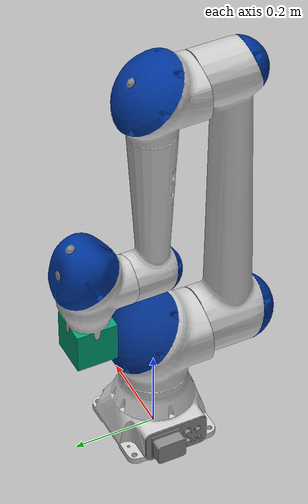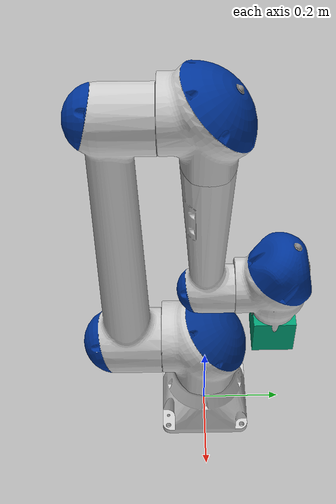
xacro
<?xml version="1.0" ?>
<robot name="motoman_hc10" xmlns:xacro="http://ros.org/wiki/xacro">
  <xacro:include filename="$(find motoman_hc10_support)/urdf/hc10_macro.xacro" />
  <xacro:motoman_hc10 prefix=""/>

    <!-- Attach Kinect to OT -->
  <joint type="fixed" name="tool_camera_joint">
      <origin xyz="0 0 0" rpy="0 0 0"/>
      <child link="camera_rgb_frame"/>
      <parent link="tool0"/>
      <axis xyz="0 0 -0.2" rpy="0 0 0"/>
      <limit effort="10000" velocity="1000"/>
      <dynamics damping="1.0" friction="1.0"/>
  </joint>
</robot>

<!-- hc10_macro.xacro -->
<robot xmlns:xacro="http://ros.org/wiki/xacro">
  <xacro:macro name="motoman_hc10" params="prefix">
    <xacro:include filename="$(find motoman_resources)/urdf/common_materials.xacro"/>
    <!-- link list -->
    <link name="world"/>

    <link name="${prefix}base_link">
      <visual>
        <geometry>
          <mesh filename="package://motoman_hc10_support/meshes/hc10/visual/base_link.dae"/>
        </geometry>
        <xacro:material_yaskawa_blue/>
      </visual>
      <collision>
        <geometry>
          <mesh filename="package://motoman_hc10_support/meshes/hc10/collision/base_link.stl"/>
        </geometry>
      </collision>
      <inertial>
        <origin xyz="0 0 0" rpy="0 0 0"/>
        <mass value="0.1"/>
        <inertia ixx="0.03" ixy="0.03" ixz="0.03" iyy="0.0" iyz="0.0" izz="0.0"/>
      </inertial>
    </link>

    <link name="${prefix}link_1_s">
      <visual>
        <geometry>
          <mesh filename="package://motoman_hc10_support/meshes/hc10/visual/link_1_s.dae"/>
        </geometry>
        <xacro:material_yaskawa_blue/>
      </visual>
      <collision>
        <geometry>
          <mesh filename="package://motoman_hc10_support/meshes/hc10/collision/link_1_s.stl"/>
        </geometry>
      </collision>
      <inertial>
        <origin xyz="0 0 0" rpy="0 0 0"/>
        <mass value="0.1"/>
        <inertia ixx="0.03" ixy="0.03" ixz="0.03" iyy="0.0" iyz="0.0" izz="0.0"/>
      </inertial>
    </link>

    <link name="${prefix}link_2_l">
      <visual>
        <geometry>
          <mesh filename="package://motoman_hc10_support/meshes/hc10/visual/link_2_l.dae"/>
        </geometry>
        <xacro:material_yaskawa_blue/>
      </visual>
      <collision>
        <geometry>
          <mesh filename="package://motoman_hc10_support/meshes/hc10/collision/link_2_l.stl"/>
        </geometry>
      </collision>
      <inertial>
        <origin xyz="0 0 0" rpy="0 0 0"/>
        <mass value="0.1"/>
        <inertia ixx="0.03" ixy="0.03" ixz="0.03" iyy="0.0" iyz="0.0" izz="0.0"/>
      </inertial>
    </link>

    <link name="${prefix}link_3_u">
      <visual>
        <geometry>
          <mesh filename="package://motoman_hc10_support/meshes/hc10/visual/link_3_u.dae"/>
        </geometry>
        <xacro:material_yaskawa_blue/>
      </visual>
      <collision>
        <geometry>
          <mesh filename="package://motoman_hc10_support/meshes/hc10/collision/link_3_u.stl"/>
        </geometry>
      </collision>
      <inertial>
        <origin xyz="0 0 0" rpy="0 0 0"/>
        <mass value="0.1"/>
        <inertia ixx="0.03" ixy="0.03" ixz="0.03" iyy="0.0" iyz="0.0" izz="0.0"/>
      </inertial>
    </link>

    <link name="${prefix}link_4_r">
      <visual>
        <geometry>
          <mesh filename="package://motoman_hc10_support/meshes/hc10/visual/link_4_r.dae"/>
        </geometry>
        <xacro:material_yaskawa_blue/>
      </visual>
      <collision>
        <geometry>
          <mesh filename="package://motoman_hc10_support/meshes/hc10/collision/link_4_r.stl"/>
        </geometry>
      </collision>
      <inertial>
        <origin xyz="0 0 0" rpy="0 0 0"/>
        <mass value="0.1"/>
        <inertia ixx="0.03" ixy="0.03" ixz="0.03" iyy="0.0" iyz="0.0" izz="0.0"/>
      </inertial>
    </link>

    <link name="${prefix}link_5_b">
      <visual>
        <geometry>
          <mesh filename="package://motoman_hc10_support/meshes/hc10/visual/link_5_b.dae"/>
        </geometry>
        <xacro:material_yaskawa_blue/>
      </visual>
      <collision>
        <geometry>
          <mesh filename="package://motoman_hc10_support/meshes/hc10/collision/link_5_b.stl"/>
        </geometry>
      </collision>
      <inertial>
        <origin xyz="0 0 0" rpy="0 0 0"/>
        <mass value="0.1"/>
        <inertia ixx="0.03" ixy="0.03" ixz="0.03" iyy="0.0" iyz="0.0" izz="0.0"/>
      </inertial>
    </link>

    <link name="${prefix}link_6_t">
      <visual>
        <geometry>
          <mesh filename="package://motoman_hc10_support/meshes/hc10/visual/link_6_t.dae"/>
        </geometry>
        <xacro:material_yaskawa_blue/>
      </visual>
      <collision>
        <geometry>
          <mesh filename="package://motoman_hc10_support/meshes/hc10/collision/link_6_t.stl"/>
        </geometry>
      </collision>
      <inertial>
        <origin xyz="0 0 0" rpy="0 0 0"/>
        <mass value="0.1"/>
        <inertia ixx="0.03" ixy="0.03" ixz="0.03" iyy="0.0" iyz="0.0" izz="0.0"/>
      </inertial>
    </link>

    <link name="${prefix}tool0"/>
    <!-- end of link list -->

    <!-- joint list -->
    <joint name="world_fixed" type="fixed">
      <parent link="world"/>
      <child link="${prefix}base_link"/>
    </joint>

    <joint name="${prefix}joint_1_s" type="revolute">
      <parent link="${prefix}base_link"/>
      <child link="${prefix}link_1_s"/>
      <origin xyz="0 0 0.275" rpy="0 0 0" />
      <axis xyz="0 0 1" />
      <dynamics damping="1"/>
      <limit lower="${radians(-180)}" upper="${radians(180)}" effort="368.48" velocity="${radians(130)}"/>
    </joint>
    <joint name="${prefix}joint_2_l" type="revolute">
      <parent link="${prefix}link_1_s"/>
      <child link="${prefix}link_2_l"/>
      <origin xyz="0 0 0" rpy="0 0 0" />
      <axis xyz="0 1 0" />
      <dynamics damping="1"/>
      <limit lower="${radians(-180)}" upper="${radians(180)}" effort="368.48" velocity="${radians(130)}"/>
    </joint>
    <joint name="${prefix}joint_3_u" type="revolute">
      <parent link="${prefix}link_2_l"/>
      <child link="${prefix}link_3_u"/>
      <origin xyz="0 0 0.700" rpy="0 0 0" />
      <axis xyz="0 -1 0" />
      <dynamics damping="1"/>
      <limit lower="${radians(-5)}" upper="${radians(355)}" effort="141.12" velocity="${radians(180)}"/>
    </joint>
    <joint name="${prefix}joint_4_r" type="revolute">
      <parent link="${prefix}link_3_u"/>
      <child link="${prefix}link_4_r"/>
      <origin xyz="0 0 -0.500" rpy="0 0 0" />
      <axis xyz="0 0 1" />
      <dynamics damping="1"/>
      <limit lower="${radians(-180)}" upper="${radians(180)}" effort="39.20" velocity="${radians(180)}"/>
    </joint>
    <joint name="${prefix}joint_5_b" type="revolute">
      <parent link="${prefix}link_4_r"/>
      <child link="${prefix}link_5_b"/>
      <origin xyz="0 0.162 0" rpy="0 0 0" />
      <axis xyz="0 -1 0" />
      <dynamics damping="1"/>
      <limit lower="${radians(-180)}" upper="${radians(180)}" effort="31.36" velocity="${radians(250)}"/>
    </joint>
    <joint name="${prefix}joint_6_t" type="revolute">
      <parent link="${prefix}link_5_b"/>
      <child link="${prefix}link_6_t"/>
      <origin xyz="0 0 0" rpy="0 0 0" />
      <axis xyz="0 0 1" />
      <dynamics damping="1"/>
      <limit lower="${radians(-180)}" upper="${radians(180)}" effort="31.36" velocity="${radians(250)}"/>
    </joint>
    <joint name="${prefix}joint_6_t-tool0" type="fixed">
      <origin xyz="0 0 -0.130" rpy="${pi} 0 0"/>
      <parent link="${prefix}link_6_t"/>
      <child link="${prefix}tool0"/>
    </joint>
    <!-- end of joint list -->

    <!-- ROS base_link to Robot Manufacturer World Coordinates transform -->
    <link name="${prefix}base" />
    <joint name="${prefix}base_link-base" type="fixed">
      <origin xyz="0 0 0.275" rpy="0 0 0"/>
      <parent link="${prefix}base_link"/>
      <child link="${prefix}base"/>
    </joint>

  <xacro:include filename="$(find motoman_hc10_support)/urdf/hc10.control.xacro"/>
  <xacro:hc10_control prefix="${prefix}"/>
  <xacro:include filename="$(find motoman_hc10_support)/urdf/hc10_camera.xacro"/>
  <xacro:hc10_camera prefix="${prefix}"/>
  </xacro:macro>
</robot>

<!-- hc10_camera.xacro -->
<robot xmlns:xacro="http://ros.org/wiki/xacro">
    <xacro:macro name="hc10_camera" params="prefix">
    <link name="${prefix}camera_rgb_frame">
      <visual>
        <geometry>
            <box size="0.1 0.1 0.1"/>
        </geometry>
      </visual>
      <collision>
        <geometry>
            <box size="0.1 0.1 0.1"/>
        </geometry>
      </collision>
    </link>
    <xacro:include filename="$(find motoman_hc10_support)/urdf/kinect_camera.gazebo"/>

    </xacro:macro>
</robot>
